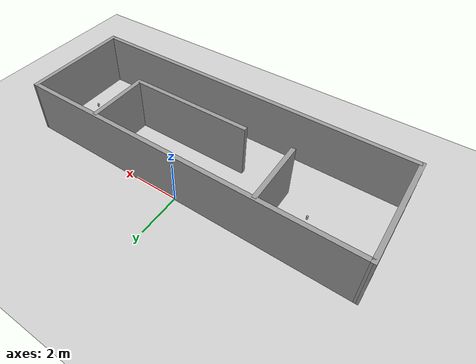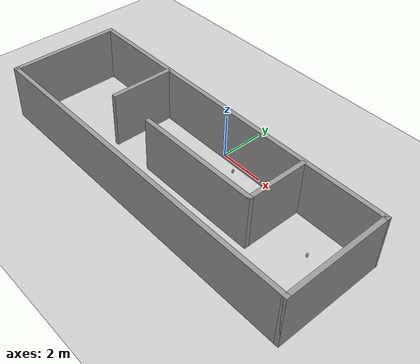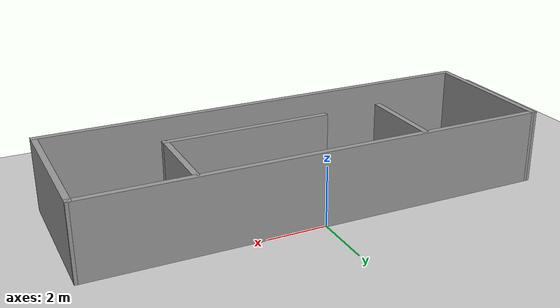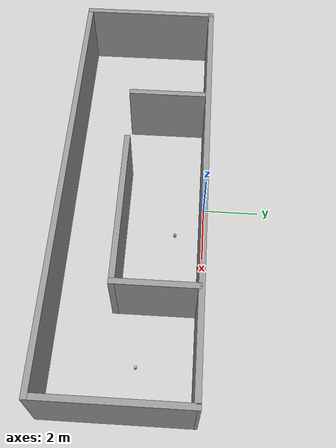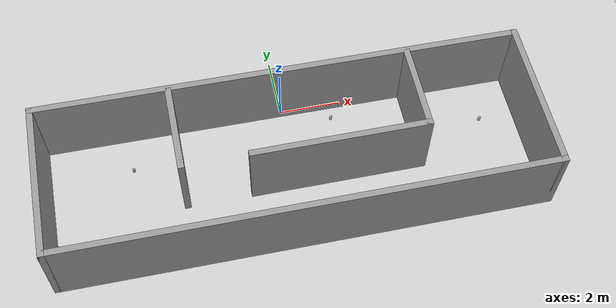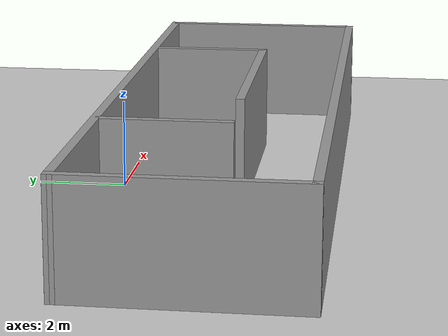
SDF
<sdf version="1.4">
 <world name="default">
  <physics type="ode">
   <gravity>0 0 -9.81</gravity>
   <ode>
    <solver><type>quick</type><iters>20</iters><sor>1</sor></solver>
    <constraints>
     <cfm>0</cfm>
     <erp>0.2</erp>
     <contact_max_correcting_vel>100</contact_max_correcting_vel>
     <contact_surface_layer>0</contact_surface_layer>
    </constraints>
   </ode>
   <real_time_update_rate>1000</real_time_update_rate>
   <max_step_size>0.001</max_step_size>
   <real_time_factor>1</real_time_factor>
  </physics>
  <light name="light1" type="directional">
   <pose>-2 0 4 0 -0 0</pose>
   <diffuse>1 1 1 1</diffuse>
   <specular>0.1 0.1 0.1 1</specular>
   <attenuation>
    <range>20</range>
    <constant>0.9</constant>
    <linear>0.01</linear>
    <quadratic>0.001</quadratic>
   </attenuation>
   <direction>0.2 0 -1</direction>
  </light>
  <model name="ground_plane">
   <static>1</static>
   <link name="link">
    <collision name="collision">
     <geometry><plane><normal>0 0 1</normal><size>100 100</size></plane></geometry>
     <surface><friction><ode><mu>100</mu><mu2>50</mu2></ode></friction></surface>
    </collision>
    <visual name="visual">
     <cast_shadows>0</cast_shadows>
     <geometry><plane><normal>0 0 1</normal><size>100 100</size></plane></geometry>
     <material>
      <script><uri>file://media/materials/scripts/gazebo.material</uri><name>Gazebo/Grey</name></script>
     </material>
    </visual>
    <velocity_decay><linear>0</linear><angular>0</angular></velocity_decay>
   </link>
  </model>
  <model name="building">
   <link name="Wall_11">
    <collision name="Wall_11_Collision">
     <geometry><box><size>2.8795 0.2 2.5</size></box></geometry>
     <pose>0 0 1.25 0 -0 0</pose>
    </collision>
    <visual name="Wall_11_Visual">
     <pose>0 0 1.25 0 -0 0</pose>
     <geometry><box><size>2.8795 0.2 2.5</size></box></geometry>
     <material>
      <script><uri>file://media/materials/scripts/gazebo.material</uri><name>Gazebo/Grey</name></script>
     </material>
    </visual>
    <velocity_decay><linear>0</linear><angular>0</angular></velocity_decay>
    <pose>4.07333 -1.51897 0 0 0 -1.5708</pose>
   </link>
   <link name="Wall_12">
    <collision name="Wall_12_Collision">
     <geometry><box><size>5.6625 0.2 2.5</size></box></geometry>
     <pose>0 0 1.25 0 -0 0</pose>
    </collision>
    <visual name="Wall_12_Visual">
     <pose>0 0 1.25 0 -0 0</pose>
     <geometry><box><size>5.6625 0.2 2.5</size></box></geometry>
     <material>
      <script><uri>file://media/materials/scripts/gazebo.material</uri><name>Gazebo/Grey</name></script>
     </material>
    </visual>
    <velocity_decay><linear>0</linear><angular>0</angular></velocity_decay>
    <pose>1.34208 -2.85872 0 0 -0 3.14159</pose>
   </link>
   <link name="Wall_2">
    <collision name="Wall_2_Collision">
     <geometry><box><size>5.09 0.2 2.5</size></box></geometry>
     <pose>0 0 1.25 0 -0 0</pose>
    </collision>
    <visual name="Wall_2_Visual">
     <pose>0 0 1.25 0 -0 0</pose>
     <geometry><box><size>5.09 0.2 2.5</size></box></geometry>
     <material>
      <script><uri>file://media/materials/scripts/gazebo.material</uri><name>Gazebo/Grey</name></script>
     </material>
    </visual>
    <velocity_decay><linear>0</linear><angular>0</angular></velocity_decay>
    <pose>-7.77 -2.465 0 0 0 -1.5708</pose>
   </link>
   <link name="Wall_3">
    <collision name="Wall_3_Collision">
     <geometry><box><size>15.61 0.2 2.5</size></box></geometry>
     <pose>0 0 1.25 0 -0 0</pose>
    </collision>
    <visual name="Wall_3_Visual">
     <pose>0 0 1.25 0 -0 0</pose>
     <geometry><box><size>15.61 0.2 2.5</size></box></geometry>
     <material>
      <script><uri>file://media/materials/scripts/gazebo.material</uri><name>Gazebo/Grey</name></script>
     </material>
    </visual>
    <velocity_decay><linear>0</linear><angular>0</angular></velocity_decay>
    <pose>-0.065 -4.91 0 0 -0 0</pose>
   </link>
   <link name="Wall_4">
    <collision name="Wall_4_Collision">
     <geometry><box><size>5.01 0.2 2.5</size></box></geometry>
     <pose>0 0 1.25 0 -0 0</pose>
    </collision>
    <visual name="Wall_4_Visual">
     <pose>0 0 1.25 0 -0 0</pose>
     <geometry><box><size>5.01 0.2 2.5</size></box></geometry>
     <material>
      <script><uri>file://media/materials/scripts/gazebo.material</uri><name>Gazebo/Grey</name></script>
     </material>
    </visual>
    <velocity_decay><linear>0</linear><angular>0</angular></velocity_decay>
    <pose>7.64 -2.505 0 0 -0 1.5708</pose>
   </link>
   <link name="Wall_5">
    <collision name="Wall_5_Collision">
     <geometry><box><size>15.6102 0.2 2.5</size></box></geometry>
     <pose>0 0 1.25 0 -0 0</pose>
    </collision>
    <visual name="Wall_5_Visual">
     <pose>0 0 1.25 0 -0 0</pose>
     <geometry><box><size>15.6102 0.2 2.5</size></box></geometry>
     <material>
      <script><uri>file://media/materials/scripts/gazebo.material</uri><name>Gazebo/Grey</name></script>
     </material>
    </visual>
    <velocity_decay><linear>0</linear><angular>0</angular></velocity_decay>
    <pose>-0.065 -0.06 0 0 -0 3.1364</pose>
   </link>
   <link name="Wall_9">
    <collision name="Wall_9_Collision">
     <geometry><box><size>2.92 0.2 2.5</size></box></geometry>
     <pose>0 0 1.25 0 -0 0</pose>
    </collision>
    <visual name="Wall_9_Visual">
     <pose>0 0 1.25 0 -0 0</pose>
     <geometry><box><size>2.92 0.2 2.5</size></box></geometry>
     <material>
      <script><uri>file://media/materials/scripts/gazebo.material</uri><name>Gazebo/Grey</name></script>
     </material>
    </visual>
    <velocity_decay><linear>0</linear><angular>0</angular></velocity_decay>
    <pose>-3.53 -1.5 0 0 0 -1.5708</pose>
   </link>
   <static>1</static>
  </model>
  <scene><ambient>0.4 0.4 0.4 1</ambient><background>0.7 0.7 0.7 1</background><shadows>1</shadows></scene>
  <spherical_coordinates>
   <surface_model>EARTH_WGS84</surface_model>
   <latitude_deg>0</latitude_deg>
   <longitude_deg>0</longitude_deg>
   <elevation>0</elevation>
   <heading_deg>0</heading_deg>
  </spherical_coordinates>
  <model name="cocacola">
   <static>0</static>
   <link name="link">
    <inertial>
     <mass>0.25</mass>
     <inertia><ixx>0</ixx><ixy>0</ixy><ixz>0</ixz><iyy>0</iyy><iyz>0</iyz><izz>0</izz></inertia>
    </inertial>
    <collision name="collision">
     <pose>0 0 0.075 -3.14159 -0 0</pose>
     <geometry><cylinder><radius>0.04</radius><length>0.15</length></cylinder></geometry>
    </collision>
    <visual name="visual">
     <pose>0 0 0.075 -3.14159 -0 0</pose>
     <geometry><cylinder><radius>0.04</radius><length>0.15</length></cylinder></geometry>
     <material>
      <script>
       <uri>model://cocacola/material/scripts</uri>
       <uri>model://cocacola/material/textures</uri>
       <name>Custom/cocacola</name>
      </script>
     </material>
    </visual>
    <velocity_decay><linear>0</linear><angular>0</angular></velocity_decay>
   </link>
   <pose>6.1718 -1.99999 0.660019 -0.000262 -0.000405 -1.32349e-23</pose>
  </model>
  <model name="cocacola_0">
   <static>0</static>
   <link name="link">
    <inertial>
     <mass>0.25</mass>
     <inertia><ixx>0</ixx><ixy>0</ixy><ixz>0</ixz><iyy>0</iyy><iyz>0</iyz><izz>0</izz></inertia>
    </inertial>
    <collision name="collision">
     <pose>0 0 0.075 -3.14159 -0 0</pose>
     <geometry><cylinder><radius>0.04</radius><length>0.15</length></cylinder></geometry>
    </collision>
    <visual name="visual">
     <pose>0 0 0.075 -3.14159 -0 0</pose>
     <geometry><cylinder><radius>0.04</radius><length>0.15</length></cylinder></geometry>
     <material>
      <script>
       <uri>model://cocacola/material/scripts</uri>
       <uri>model://cocacola/material/textures</uri>
       <name>Custom/cocacola</name>
      </script>
     </material>
    </visual>
    <velocity_decay><linear>0</linear><angular>0</angular></velocity_decay>
   </link>
   <pose>1.47426 -1 0.66002 -0.000174 -0.000462 1e-06</pose>
  </model>
  <model name="cocacola_1">
   <static>0</static>
   <link name="link">
    <inertial>
     <mass>0.25</mass>
     <inertia><ixx>0</ixx><ixy>0</ixy><ixz>0</ixz><iyy>0</iyy><iyz>0</iyz><izz>0</izz></inertia>
    </inertial>
    <collision name="collision">
     <pose>0 0 0.075 -3.14159 -0 0</pose>
     <geometry><cylinder><radius>0.04</radius><length>0.15</length></cylinder></geometry>
    </collision>
    <visual name="visual">
     <pose>0 0 0.075 -3.14159 -0 0</pose>
     <geometry><cylinder><radius>0.04</radius><length>0.15</length></cylinder></geometry>
     <material>
      <script>
       <uri>model://cocacola/material/scripts</uri>
       <uri>model://cocacola/material/textures</uri>
       <name>Custom/cocacola</name>
      </script>
     </material>
    </visual>
    <velocity_decay><linear>0</linear><angular>0</angular></velocity_decay>
   </link>
   <pose>-5 -1.68257 0.660013 0.000312 3.1e-05 0</pose>
  </model>
 </world>
</sdf>
